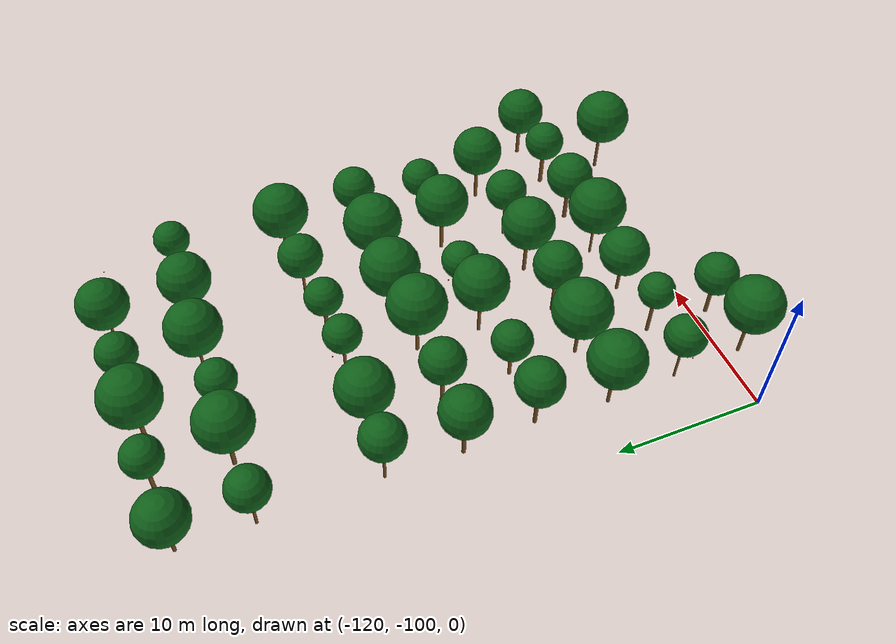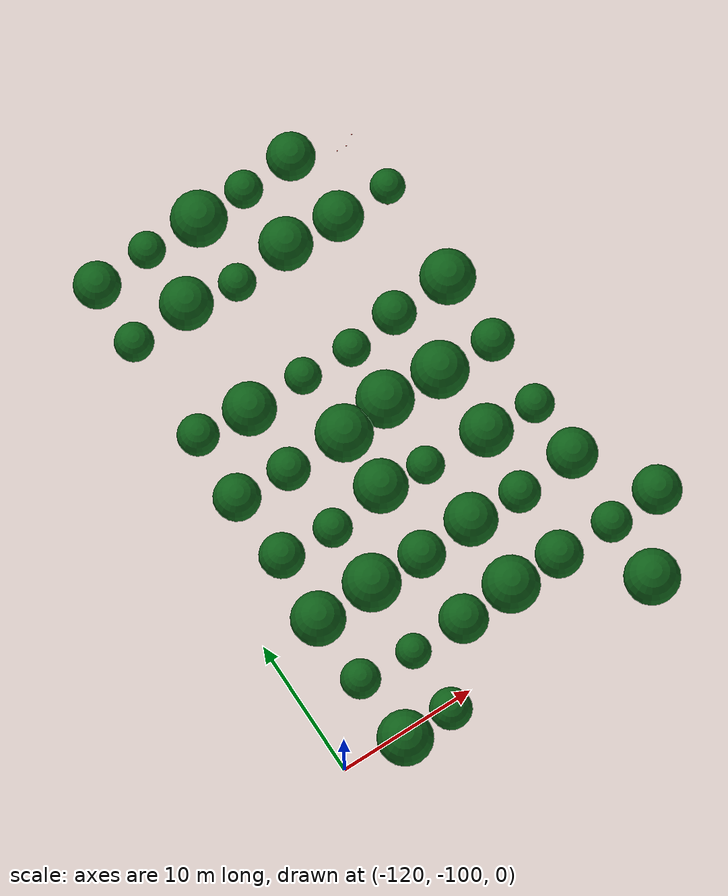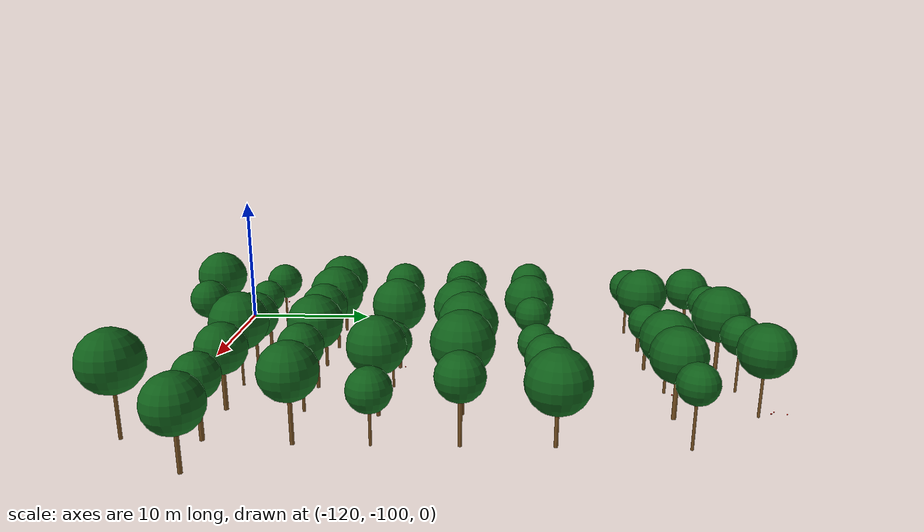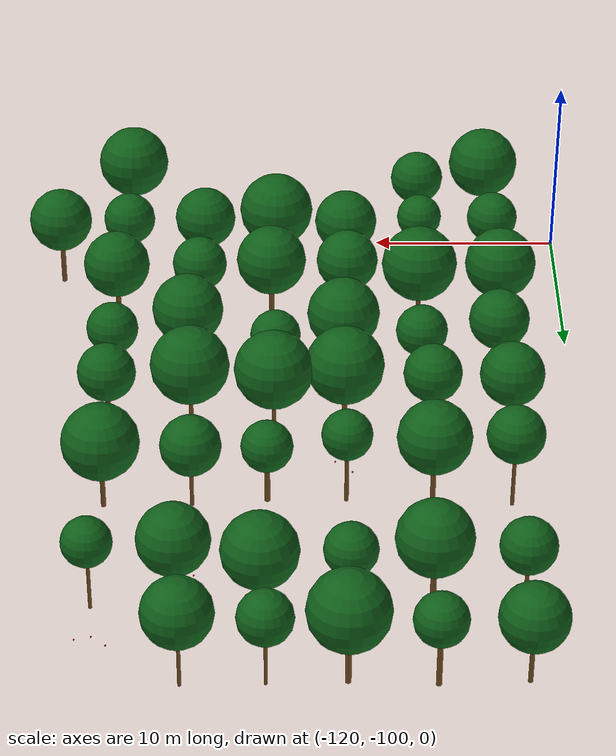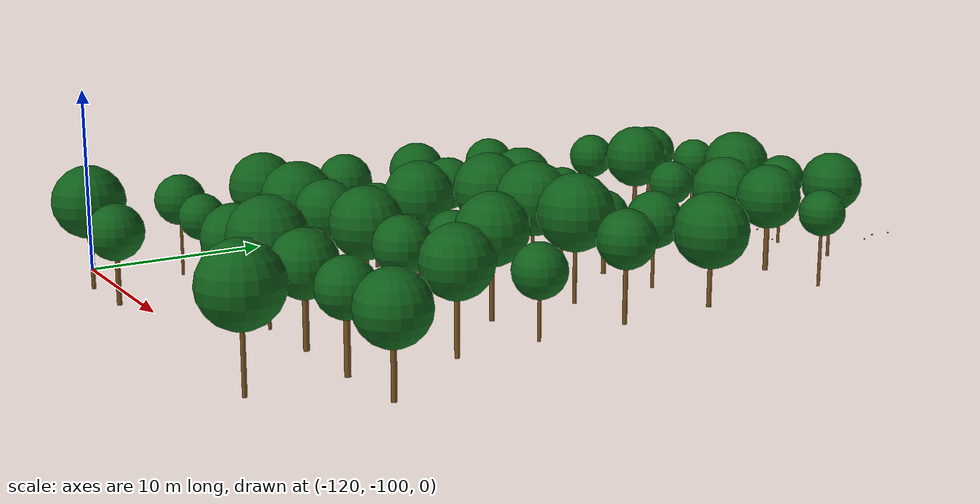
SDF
<sdf version="1.9">
 <world name="cheongsong_orchard">
  <model name="apple_tree_162">
   <static>true</static>
   <pose>-115.96 -101.16 0 0 0 0</pose>
   <link name="link">
    <collision name="trunk_col">
     <pose>0 0 1.40 0 0 0</pose>
     <geometry><cylinder><radius>0.110</radius><length>2.79</length></cylinder></geometry>
    </collision>
    <visual name="trunk_vis">
     <pose>0 0 1.40 0 0 0</pose>
     <geometry><cylinder><radius>0.110</radius><length>2.79</length></cylinder></geometry>
     <material><ambient>0.35 0.22 0.08 1</ambient><diffuse>0.45 0.30 0.12 1</diffuse></material>
    </visual>
    <collision name="canopy_col">
     <pose>0 0 4.70 0 0 0</pose>
     <geometry><sphere><radius>1.91</radius></sphere></geometry>
    </collision>
    <visual name="canopy_vis">
     <pose>0 0 4.70 0 0 0</pose>
     <geometry><sphere><radius>1.91</radius></sphere></geometry>
     <material><ambient>0.04 0.28 0.06 1</ambient><diffuse>0.06 0.38 0.10 1</diffuse></material>
    </visual>
   </link>
  </model>
  <model name="apple_tree_163">
   <static>true</static>
   <pose>-112.24 -100.99 0 0 0 0</pose>
   <link name="link">
    <collision name="trunk_col">
     <pose>0 0 1.17 0 0 0</pose>
     <geometry><cylinder><radius>0.131</radius><length>2.34</length></cylinder></geometry>
    </collision>
    <visual name="trunk_vis">
     <pose>0 0 1.17 0 0 0</pose>
     <geometry><cylinder><radius>0.131</radius><length>2.34</length></cylinder></geometry>
     <material><ambient>0.35 0.22 0.08 1</ambient><diffuse>0.45 0.30 0.12 1</diffuse></material>
    </visual>
    <collision name="canopy_col">
     <pose>0 0 3.79 0 0 0</pose>
     <geometry><sphere><radius>1.45</radius></sphere></geometry>
    </collision>
    <visual name="canopy_vis">
     <pose>0 0 3.79 0 0 0</pose>
     <geometry><sphere><radius>1.45</radius></sphere></geometry>
     <material><ambient>0.04 0.28 0.06 1</ambient><diffuse>0.06 0.38 0.10 1</diffuse></material>
    </visual>
   </link>
  </model>
  <model name="apple_tree_167">
   <static>true</static>
   <pose>-96.24 -100.97 0 0 0 0</pose>
   <link name="link">
    <collision name="trunk_col">
     <pose>0 0 1.43 0 0 0</pose>
     <geometry><cylinder><radius>0.110</radius><length>2.87</length></cylinder></geometry>
    </collision>
    <visual name="trunk_vis">
     <pose>0 0 1.43 0 0 0</pose>
     <geometry><cylinder><radius>0.110</radius><length>2.87</length></cylinder></geometry>
     <material><ambient>0.35 0.22 0.08 1</ambient><diffuse>0.45 0.30 0.12 1</diffuse></material>
    </visual>
    <collision name="canopy_col">
     <pose>0 0 4.80 0 0 0</pose>
     <geometry><sphere><radius>1.93</radius></sphere></geometry>
    </collision>
    <visual name="canopy_vis">
     <pose>0 0 4.80 0 0 0</pose>
     <geometry><sphere><radius>1.93</radius></sphere></geometry>
     <material><ambient>0.04 0.28 0.06 1</ambient><diffuse>0.06 0.38 0.10 1</diffuse></material>
    </visual>
   </link>
  </model>
  <model name="apple_tree_210">
   <static>true</static>
   <pose>-116.21 -96.12 0 0 0 0</pose>
   <link name="link">
    <collision name="trunk_col">
     <pose>0 0 1.42 0 0 0</pose>
     <geometry><cylinder><radius>0.081</radius><length>2.83</length></cylinder></geometry>
    </collision>
    <visual name="trunk_vis">
     <pose>0 0 1.42 0 0 0</pose>
     <geometry><cylinder><radius>0.081</radius><length>2.83</length></cylinder></geometry>
     <material><ambient>0.35 0.22 0.08 1</ambient><diffuse>0.45 0.30 0.12 1</diffuse></material>
    </visual>
    <collision name="canopy_col">
     <pose>0 0 4.21 0 0 0</pose>
     <geometry><sphere><radius>1.37</radius></sphere></geometry>
    </collision>
    <visual name="canopy_vis">
     <pose>0 0 4.21 0 0 0</pose>
     <geometry><sphere><radius>1.37</radius></sphere></geometry>
     <material><ambient>0.04 0.28 0.06 1</ambient><diffuse>0.06 0.38 0.10 1</diffuse></material>
    </visual>
   </link>
  </model>
  <model name="apple_tree_211">
   <static>true</static>
   <pose>-112.22 -96.42 0 0 0 0</pose>
   <link name="link">
    <collision name="trunk_col">
     <pose>0 0 1.42 0 0 0</pose>
     <geometry><cylinder><radius>0.122</radius><length>2.83</length></cylinder></geometry>
    </collision>
    <visual name="trunk_vis">
     <pose>0 0 1.42 0 0 0</pose>
     <geometry><cylinder><radius>0.122</radius><length>2.83</length></cylinder></geometry>
     <material><ambient>0.35 0.22 0.08 1</ambient><diffuse>0.45 0.30 0.12 1</diffuse></material>
    </visual>
    <collision name="canopy_col">
     <pose>0 0 4.05 0 0 0</pose>
     <geometry><sphere><radius>1.21</radius></sphere></geometry>
    </collision>
    <visual name="canopy_vis">
     <pose>0 0 4.05 0 0 0</pose>
     <geometry><sphere><radius>1.21</radius></sphere></geometry>
     <material><ambient>0.04 0.28 0.06 1</ambient><diffuse>0.06 0.38 0.10 1</diffuse></material>
    </visual>
   </link>
  </model>
  <model name="apple_tree_212">
   <static>true</static>
   <pose>-108.18 -96.34 0 0 0 0</pose>
   <link name="link">
    <collision name="trunk_col">
     <pose>0 0 1.04 0 0 0</pose>
     <geometry><cylinder><radius>0.110</radius><length>2.09</length></cylinder></geometry>
    </collision>
    <visual name="trunk_vis">
     <pose>0 0 1.04 0 0 0</pose>
     <geometry><cylinder><radius>0.110</radius><length>2.09</length></cylinder></geometry>
     <material><ambient>0.35 0.22 0.08 1</ambient><diffuse>0.45 0.30 0.12 1</diffuse></material>
    </visual>
    <collision name="canopy_col">
     <pose>0 0 3.78 0 0 0</pose>
     <geometry><sphere><radius>1.69</radius></sphere></geometry>
    </collision>
    <visual name="canopy_vis">
     <pose>0 0 3.78 0 0 0</pose>
     <geometry><sphere><radius>1.69</radius></sphere></geometry>
     <material><ambient>0.04 0.28 0.06 1</ambient><diffuse>0.06 0.38 0.10 1</diffuse></material>
    </visual>
   </link>
  </model>
  <model name="apple_tree_213">
   <static>true</static>
   <pose>-104.35 -96.24 0 0 0 0</pose>
   <link name="link">
    <collision name="trunk_col">
     <pose>0 0 1.30 0 0 0</pose>
     <geometry><cylinder><radius>0.086</radius><length>2.60</length></cylinder></geometry>
    </collision>
    <visual name="trunk_vis">
     <pose>0 0 1.30 0 0 0</pose>
     <geometry><cylinder><radius>0.086</radius><length>2.60</length></cylinder></geometry>
     <material><ambient>0.35 0.22 0.08 1</ambient><diffuse>0.45 0.30 0.12 1</diffuse></material>
    </visual>
    <collision name="canopy_col">
     <pose>0 0 4.58 0 0 0</pose>
     <geometry><sphere><radius>1.98</radius></sphere></geometry>
    </collision>
    <visual name="canopy_vis">
     <pose>0 0 4.58 0 0 0</pose>
     <geometry><sphere><radius>1.98</radius></sphere></geometry>
     <material><ambient>0.04 0.28 0.06 1</ambient><diffuse>0.06 0.38 0.10 1</diffuse></material>
    </visual>
   </link>
  </model>
  <model name="apple_tree_214">
   <static>true</static>
   <pose>-100.45 -96.17 0 0 0 0</pose>
   <link name="link">
    <collision name="trunk_col">
     <pose>0 0 1.22 0 0 0</pose>
     <geometry><cylinder><radius>0.149</radius><length>2.44</length></cylinder></geometry>
    </collision>
    <visual name="trunk_vis">
     <pose>0 0 1.22 0 0 0</pose>
     <geometry><cylinder><radius>0.149</radius><length>2.44</length></cylinder></geometry>
     <material><ambient>0.35 0.22 0.08 1</ambient><diffuse>0.45 0.30 0.12 1</diffuse></material>
    </visual>
    <collision name="canopy_col">
     <pose>0 0 4.09 0 0 0</pose>
     <geometry><sphere><radius>1.64</radius></sphere></geometry>
    </collision>
    <visual name="canopy_vis">
     <pose>0 0 4.09 0 0 0</pose>
     <geometry><sphere><radius>1.64</radius></sphere></geometry>
     <material><ambient>0.04 0.28 0.06 1</ambient><diffuse>0.06 0.38 0.10 1</diffuse></material>
    </visual>
   </link>
  </model>
  <model name="apple_tree_215">
   <static>true</static>
   <pose>-96.26 -96.21 0 0 0 0</pose>
   <link name="link">
    <collision name="trunk_col">
     <pose>0 0 1.28 0 0 0</pose>
     <geometry><cylinder><radius>0.149</radius><length>2.57</length></cylinder></geometry>
    </collision>
    <visual name="trunk_vis">
     <pose>0 0 1.28 0 0 0</pose>
     <geometry><cylinder><radius>0.149</radius><length>2.57</length></cylinder></geometry>
     <material><ambient>0.35 0.22 0.08 1</ambient><diffuse>0.45 0.30 0.12 1</diffuse></material>
    </visual>
    <collision name="canopy_col">
     <pose>0 0 3.97 0 0 0</pose>
     <geometry><sphere><radius>1.40</radius></sphere></geometry>
    </collision>
    <visual name="canopy_vis">
     <pose>0 0 3.97 0 0 0</pose>
     <geometry><sphere><radius>1.40</radius></sphere></geometry>
     <material><ambient>0.04 0.28 0.06 1</ambient><diffuse>0.06 0.38 0.10 1</diffuse></material>
    </visual>
   </link>
  </model>
  <model name="apple_tree_216">
   <static>true</static>
   <pose>-92.48 -96.02 0 0 0 0</pose>
   <link name="link">
    <collision name="trunk_col">
     <pose>0 0 1.14 0 0 0</pose>
     <geometry><cylinder><radius>0.131</radius><length>2.29</length></cylinder></geometry>
    </collision>
    <visual name="trunk_vis">
     <pose>0 0 1.14 0 0 0</pose>
     <geometry><cylinder><radius>0.131</radius><length>2.29</length></cylinder></geometry>
     <material><ambient>0.35 0.22 0.08 1</ambient><diffuse>0.45 0.30 0.12 1</diffuse></material>
    </visual>
    <collision name="canopy_col">
     <pose>0 0 3.99 0 0 0</pose>
     <geometry><sphere><radius>1.70</radius></sphere></geometry>
    </collision>
    <visual name="canopy_vis">
     <pose>0 0 3.99 0 0 0</pose>
     <geometry><sphere><radius>1.70</radius></sphere></geometry>
     <material><ambient>0.04 0.28 0.06 1</ambient><diffuse>0.06 0.38 0.10 1</diffuse></material>
    </visual>
   </link>
  </model>
  <model name="apple_tree_261">
   <static>true</static>
   <pose>-116.37 -91.19 0 0 0 0</pose>
   <link name="link">
    <collision name="trunk_col">
     <pose>0 0 1.27 0 0 0</pose>
     <geometry><cylinder><radius>0.113</radius><length>2.55</length></cylinder></geometry>
    </collision>
    <visual name="trunk_vis">
     <pose>0 0 1.27 0 0 0</pose>
     <geometry><cylinder><radius>0.113</radius><length>2.55</length></cylinder></geometry>
     <material><ambient>0.35 0.22 0.08 1</ambient><diffuse>0.45 0.30 0.12 1</diffuse></material>
    </visual>
    <collision name="canopy_col">
     <pose>0 0 4.42 0 0 0</pose>
     <geometry><sphere><radius>1.88</radius></sphere></geometry>
    </collision>
    <visual name="canopy_vis">
     <pose>0 0 4.42 0 0 0</pose>
     <geometry><sphere><radius>1.88</radius></sphere></geometry>
     <material><ambient>0.04 0.28 0.06 1</ambient><diffuse>0.06 0.38 0.10 1</diffuse></material>
    </visual>
   </link>
  </model>
  <model name="apple_tree_262">
   <static>true</static>
   <pose>-112.05 -91.07 0 0 0 0</pose>
   <link name="link">
    <collision name="trunk_col">
     <pose>0 0 1.23 0 0 0</pose>
     <geometry><cylinder><radius>0.119</radius><length>2.46</length></cylinder></geometry>
    </collision>
    <visual name="trunk_vis">
     <pose>0 0 1.23 0 0 0</pose>
     <geometry><cylinder><radius>0.119</radius><length>2.46</length></cylinder></geometry>
     <material><ambient>0.35 0.22 0.08 1</ambient><diffuse>0.45 0.30 0.12 1</diffuse></material>
    </visual>
    <collision name="canopy_col">
     <pose>0 0 4.45 0 0 0</pose>
     <geometry><sphere><radius>2.00</radius></sphere></geometry>
    </collision>
    <visual name="canopy_vis">
     <pose>0 0 4.45 0 0 0</pose>
     <geometry><sphere><radius>2.00</radius></sphere></geometry>
     <material><ambient>0.04 0.28 0.06 1</ambient><diffuse>0.06 0.38 0.10 1</diffuse></material>
    </visual>
   </link>
  </model>
  <model name="apple_tree_263">
   <static>true</static>
   <pose>-108.20 -91.26 0 0 0 0</pose>
   <link name="link">
    <collision name="trunk_col">
     <pose>0 0 1.44 0 0 0</pose>
     <geometry><cylinder><radius>0.112</radius><length>2.88</length></cylinder></geometry>
    </collision>
    <visual name="trunk_vis">
     <pose>0 0 1.44 0 0 0</pose>
     <geometry><cylinder><radius>0.112</radius><length>2.88</length></cylinder></geometry>
     <material><ambient>0.35 0.22 0.08 1</ambient><diffuse>0.45 0.30 0.12 1</diffuse></material>
    </visual>
    <collision name="canopy_col">
     <pose>0 0 4.51 0 0 0</pose>
     <geometry><sphere><radius>1.63</radius></sphere></geometry>
    </collision>
    <visual name="canopy_vis">
     <pose>0 0 4.51 0 0 0</pose>
     <geometry><sphere><radius>1.63</radius></sphere></geometry>
     <material><ambient>0.04 0.28 0.06 1</ambient><diffuse>0.06 0.38 0.10 1</diffuse></material>
    </visual>
   </link>
  </model>
  <model name="apple_tree_264">
   <static>true</static>
   <pose>-104.16 -91.08 0 0 0 0</pose>
   <link name="link">
    <collision name="trunk_col">
     <pose>0 0 1.40 0 0 0</pose>
     <geometry><cylinder><radius>0.128</radius><length>2.80</length></cylinder></geometry>
    </collision>
    <visual name="trunk_vis">
     <pose>0 0 1.40 0 0 0</pose>
     <geometry><cylinder><radius>0.128</radius><length>2.80</length></cylinder></geometry>
     <material><ambient>0.35 0.22 0.08 1</ambient><diffuse>0.45 0.30 0.12 1</diffuse></material>
    </visual>
    <collision name="canopy_col">
     <pose>0 0 4.64 0 0 0</pose>
     <geometry><sphere><radius>1.84</radius></sphere></geometry>
    </collision>
    <visual name="canopy_vis">
     <pose>0 0 4.64 0 0 0</pose>
     <geometry><sphere><radius>1.84</radius></sphere></geometry>
     <material><ambient>0.04 0.28 0.06 1</ambient><diffuse>0.06 0.38 0.10 1</diffuse></material>
    </visual>
   </link>
  </model>
  <model name="apple_tree_265">
   <static>true</static>
   <pose>-100.33 -91.20 0 0 0 0</pose>
   <link name="link">
    <collision name="trunk_col">
     <pose>0 0 1.44 0 0 0</pose>
     <geometry><cylinder><radius>0.100</radius><length>2.88</length></cylinder></geometry>
    </collision>
    <visual name="trunk_vis">
     <pose>0 0 1.44 0 0 0</pose>
     <geometry><cylinder><radius>0.100</radius><length>2.88</length></cylinder></geometry>
     <material><ambient>0.35 0.22 0.08 1</ambient><diffuse>0.45 0.30 0.12 1</diffuse></material>
    </visual>
    <collision name="canopy_col">
     <pose>0 0 4.32 0 0 0</pose>
     <geometry><sphere><radius>1.44</radius></sphere></geometry>
    </collision>
    <visual name="canopy_vis">
     <pose>0 0 4.32 0 0 0</pose>
     <geometry><sphere><radius>1.44</radius></sphere></geometry>
     <material><ambient>0.04 0.28 0.06 1</ambient><diffuse>0.06 0.38 0.10 1</diffuse></material>
    </visual>
   </link>
  </model>
  <model name="apple_tree_266">
   <static>true</static>
   <pose>-95.92 -90.90 0 0 0 0</pose>
   <link name="link">
    <collision name="trunk_col">
     <pose>0 0 1.35 0 0 0</pose>
     <geometry><cylinder><radius>0.129</radius><length>2.70</length></cylinder></geometry>
    </collision>
    <visual name="trunk_vis">
     <pose>0 0 1.35 0 0 0</pose>
     <geometry><cylinder><radius>0.129</radius><length>2.70</length></cylinder></geometry>
     <material><ambient>0.35 0.22 0.08 1</ambient><diffuse>0.45 0.30 0.12 1</diffuse></material>
    </visual>
    <collision name="canopy_col">
     <pose>0 0 4.45 0 0 0</pose>
     <geometry><sphere><radius>1.75</radius></sphere></geometry>
    </collision>
    <visual name="canopy_vis">
     <pose>0 0 4.45 0 0 0</pose>
     <geometry><sphere><radius>1.75</radius></sphere></geometry>
     <material><ambient>0.04 0.28 0.06 1</ambient><diffuse>0.06 0.38 0.10 1</diffuse></material>
    </visual>
   </link>
  </model>
  <model name="apple_tree_317">
   <static>true</static>
   <pose>-116.03 -86.20 0 0 0 0</pose>
   <link name="link">
    <collision name="trunk_col">
     <pose>0 0 1.33 0 0 0</pose>
     <geometry><cylinder><radius>0.132</radius><length>2.66</length></cylinder></geometry>
    </collision>
    <visual name="trunk_vis">
     <pose>0 0 1.33 0 0 0</pose>
     <geometry><cylinder><radius>0.132</radius><length>2.66</length></cylinder></geometry>
     <material><ambient>0.35 0.22 0.08 1</ambient><diffuse>0.45 0.30 0.12 1</diffuse></material>
    </visual>
    <collision name="canopy_col">
     <pose>0 0 4.22 0 0 0</pose>
     <geometry><sphere><radius>1.57</radius></sphere></geometry>
    </collision>
    <visual name="canopy_vis">
     <pose>0 0 4.22 0 0 0</pose>
     <geometry><sphere><radius>1.57</radius></sphere></geometry>
     <material><ambient>0.04 0.28 0.06 1</ambient><diffuse>0.06 0.38 0.10 1</diffuse></material>
    </visual>
   </link>
  </model>
  <model name="apple_tree_318">
   <static>true</static>
   <pose>-112.05 -86.28 0 0 0 0</pose>
   <link name="link">
    <collision name="trunk_col">
     <pose>0 0 1.04 0 0 0</pose>
     <geometry><cylinder><radius>0.118</radius><length>2.09</length></cylinder></geometry>
    </collision>
    <visual name="trunk_vis">
     <pose>0 0 1.04 0 0 0</pose>
     <geometry><cylinder><radius>0.118</radius><length>2.09</length></cylinder></geometry>
     <material><ambient>0.35 0.22 0.08 1</ambient><diffuse>0.45 0.30 0.12 1</diffuse></material>
    </visual>
    <collision name="canopy_col">
     <pose>0 0 3.43 0 0 0</pose>
     <geometry><sphere><radius>1.35</radius></sphere></geometry>
    </collision>
    <visual name="canopy_vis">
     <pose>0 0 3.43 0 0 0</pose>
     <geometry><sphere><radius>1.35</radius></sphere></geometry>
     <material><ambient>0.04 0.28 0.06 1</ambient><diffuse>0.06 0.38 0.10 1</diffuse></material>
    </visual>
   </link>
  </model>
  <model name="apple_tree_319">
   <static>true</static>
   <pose>-107.96 -85.90 0 0 0 0</pose>
   <link name="link">
    <collision name="trunk_col">
     <pose>0 0 1.44 0 0 0</pose>
     <geometry><cylinder><radius>0.117</radius><length>2.88</length></cylinder></geometry>
    </collision>
    <visual name="trunk_vis">
     <pose>0 0 1.44 0 0 0</pose>
     <geometry><cylinder><radius>0.117</radius><length>2.88</length></cylinder></geometry>
     <material><ambient>0.35 0.22 0.08 1</ambient><diffuse>0.45 0.30 0.12 1</diffuse></material>
    </visual>
    <collision name="canopy_col">
     <pose>0 0 4.75 0 0 0</pose>
     <geometry><sphere><radius>1.87</radius></sphere></geometry>
    </collision>
    <visual name="canopy_vis">
     <pose>0 0 4.75 0 0 0</pose>
     <geometry><sphere><radius>1.87</radius></sphere></geometry>
     <material><ambient>0.04 0.28 0.06 1</ambient><diffuse>0.06 0.38 0.10 1</diffuse></material>
    </visual>
   </link>
  </model>
  <model name="apple_tree_320">
   <static>true</static>
   <pose>-104.44 -86.00 0 0 0 0</pose>
   <link name="link">
    <collision name="trunk_col">
     <pose>0 0 1.00 0 0 0</pose>
     <geometry><cylinder><radius>0.080</radius><length>2.00</length></cylinder></geometry>
    </collision>
    <visual name="trunk_vis">
     <pose>0 0 1.00 0 0 0</pose>
     <geometry><cylinder><radius>0.080</radius><length>2.00</length></cylinder></geometry>
     <material><ambient>0.35 0.22 0.08 1</ambient><diffuse>0.45 0.30 0.12 1</diffuse></material>
    </visual>
    <collision name="canopy_col">
     <pose>0 0 3.31 0 0 0</pose>
     <geometry><sphere><radius>1.31</radius></sphere></geometry>
    </collision>
    <visual name="canopy_vis">
     <pose>0 0 3.31 0 0 0</pose>
     <geometry><sphere><radius>1.31</radius></sphere></geometry>
     <material><ambient>0.04 0.28 0.06 1</ambient><diffuse>0.06 0.38 0.10 1</diffuse></material>
    </visual>
   </link>
  </model>
  <model name="apple_tree_321">
   <static>true</static>
   <pose>-99.90 -86.48 0 0 0 0</pose>
   <link name="link">
    <collision name="trunk_col">
     <pose>0 0 1.37 0 0 0</pose>
     <geometry><cylinder><radius>0.127</radius><length>2.74</length></cylinder></geometry>
    </collision>
    <visual name="trunk_vis">
     <pose>0 0 1.37 0 0 0</pose>
     <geometry><cylinder><radius>0.127</radius><length>2.74</length></cylinder></geometry>
     <material><ambient>0.35 0.22 0.08 1</ambient><diffuse>0.45 0.30 0.12 1</diffuse></material>
    </visual>
    <collision name="canopy_col">
     <pose>0 0 4.59 0 0 0</pose>
     <geometry><sphere><radius>1.84</radius></sphere></geometry>
    </collision>
    <visual name="canopy_vis">
     <pose>0 0 4.59 0 0 0</pose>
     <geometry><sphere><radius>1.84</radius></sphere></geometry>
     <material><ambient>0.04 0.28 0.06 1</ambient><diffuse>0.06 0.38 0.10 1</diffuse></material>
    </visual>
   </link>
  </model>
  <model name="apple_tree_322">
   <static>true</static>
   <pose>-95.94 -86.43 0 0 0 0</pose>
   <link name="link">
    <collision name="trunk_col">
     <pose>0 0 1.02 0 0 0</pose>
     <geometry><cylinder><radius>0.090</radius><length>2.04</length></cylinder></geometry>
    </collision>
    <visual name="trunk_vis">
     <pose>0 0 1.02 0 0 0</pose>
     <geometry><cylinder><radius>0.090</radius><length>2.04</length></cylinder></geometry>
     <material><ambient>0.35 0.22 0.08 1</ambient><diffuse>0.45 0.30 0.12 1</diffuse></material>
    </visual>
    <collision name="canopy_col">
     <pose>0 0 3.40 0 0 0</pose>
     <geometry><sphere><radius>1.35</radius></sphere></geometry>
    </collision>
    <visual name="canopy_vis">
     <pose>0 0 3.40 0 0 0</pose>
     <geometry><sphere><radius>1.35</radius></sphere></geometry>
     <material><ambient>0.04 0.28 0.06 1</ambient><diffuse>0.06 0.38 0.10 1</diffuse></material>
    </visual>
   </link>
  </model>
  <model name="apple_tree_372">
   <static>true</static>
   <pose>-116.39 -81.22 0 0 0 0</pose>
   <link name="link">
    <collision name="trunk_col">
     <pose>0 0 1.34 0 0 0</pose>
     <geometry><cylinder><radius>0.134</radius><length>2.67</length></cylinder></geometry>
    </collision>
    <visual name="trunk_vis">
     <pose>0 0 1.34 0 0 0</pose>
     <geometry><cylinder><radius>0.134</radius><length>2.67</length></cylinder></geometry>
     <material><ambient>0.35 0.22 0.08 1</ambient><diffuse>0.45 0.30 0.12 1</diffuse></material>
    </visual>
    <collision name="canopy_col">
     <pose>0 0 4.31 0 0 0</pose>
     <geometry><sphere><radius>1.64</radius></sphere></geometry>
    </collision>
    <visual name="canopy_vis">
     <pose>0 0 4.31 0 0 0</pose>
     <geometry><sphere><radius>1.64</radius></sphere></geometry>
     <material><ambient>0.04 0.28 0.06 1</ambient><diffuse>0.06 0.38 0.10 1</diffuse></material>
    </visual>
   </link>
  </model>
  <model name="apple_tree_373">
   <static>true</static>
   <pose>-112.42 -81.42 0 0 0 0</pose>
   <link name="link">
    <collision name="trunk_col">
     <pose>0 0 1.35 0 0 0</pose>
     <geometry><cylinder><radius>0.138</radius><length>2.71</length></cylinder></geometry>
    </collision>
    <visual name="trunk_vis">
     <pose>0 0 1.35 0 0 0</pose>
     <geometry><cylinder><radius>0.138</radius><length>2.71</length></cylinder></geometry>
     <material><ambient>0.35 0.22 0.08 1</ambient><diffuse>0.45 0.30 0.12 1</diffuse></material>
    </visual>
    <collision name="canopy_col">
     <pose>0 0 4.20 0 0 0</pose>
     <geometry><sphere><radius>1.49</radius></sphere></geometry>
    </collision>
    <visual name="canopy_vis">
     <pose>0 0 4.20 0 0 0</pose>
     <geometry><sphere><radius>1.49</radius></sphere></geometry>
     <material><ambient>0.04 0.28 0.06 1</ambient><diffuse>0.06 0.38 0.10 1</diffuse></material>
    </visual>
   </link>
  </model>
  <model name="apple_tree_374">
   <static>true</static>
   <pose>-108.00 -81.46 0 0 0 0</pose>
   <link name="link">
    <collision name="trunk_col">
     <pose>0 0 1.33 0 0 0</pose>
     <geometry><cylinder><radius>0.118</radius><length>2.65</length></cylinder></geometry>
    </collision>
    <visual name="trunk_vis">
     <pose>0 0 1.33 0 0 0</pose>
     <geometry><cylinder><radius>0.118</radius><length>2.65</length></cylinder></geometry>
     <material><ambient>0.35 0.22 0.08 1</ambient><diffuse>0.45 0.30 0.12 1</diffuse></material>
    </visual>
    <collision name="canopy_col">
     <pose>0 0 4.64 0 0 0</pose>
     <geometry><sphere><radius>1.99</radius></sphere></geometry>
    </collision>
    <visual name="canopy_vis">
     <pose>0 0 4.64 0 0 0</pose>
     <geometry><sphere><radius>1.99</radius></sphere></geometry>
     <material><ambient>0.04 0.28 0.06 1</ambient><diffuse>0.06 0.38 0.10 1</diffuse></material>
    </visual>
   </link>
  </model>
  <model name="apple_tree_375">
   <static>true</static>
   <pose>-104.43 -80.99 0 0 0 0</pose>
   <link name="link">
    <collision name="trunk_col">
     <pose>0 0 1.34 0 0 0</pose>
     <geometry><cylinder><radius>0.101</radius><length>2.68</length></cylinder></geometry>
    </collision>
    <visual name="trunk_vis">
     <pose>0 0 1.34 0 0 0</pose>
     <geometry><cylinder><radius>0.101</radius><length>2.68</length></cylinder></geometry>
     <material><ambient>0.35 0.22 0.08 1</ambient><diffuse>0.45 0.30 0.12 1</diffuse></material>
    </visual>
    <collision name="canopy_col">
     <pose>0 0 4.68 0 0 0</pose>
     <geometry><sphere><radius>2.00</radius></sphere></geometry>
    </collision>
    <visual name="canopy_vis">
     <pose>0 0 4.68 0 0 0</pose>
     <geometry><sphere><radius>2.00</radius></sphere></geometry>
     <material><ambient>0.04 0.28 0.06 1</ambient><diffuse>0.06 0.38 0.10 1</diffuse></material>
    </visual>
   </link>
  </model>
  <model name="apple_tree_376">
   <static>true</static>
   <pose>-100.22 -81.28 0 0 0 0</pose>
   <link name="link">
    <collision name="trunk_col">
     <pose>0 0 1.37 0 0 0</pose>
     <geometry><cylinder><radius>0.111</radius><length>2.75</length></cylinder></geometry>
    </collision>
    <visual name="trunk_vis">
     <pose>0 0 1.37 0 0 0</pose>
     <geometry><cylinder><radius>0.111</radius><length>2.75</length></cylinder></geometry>
     <material><ambient>0.35 0.22 0.08 1</ambient><diffuse>0.45 0.30 0.12 1</diffuse></material>
    </visual>
    <collision name="canopy_col">
     <pose>0 0 4.74 0 0 0</pose>
     <geometry><sphere><radius>2.00</radius></sphere></geometry>
    </collision>
    <visual name="canopy_vis">
     <pose>0 0 4.74 0 0 0</pose>
     <geometry><sphere><radius>2.00</radius></sphere></geometry>
     <material><ambient>0.04 0.28 0.06 1</ambient><diffuse>0.06 0.38 0.10 1</diffuse></material>
    </visual>
   </link>
  </model>
  <model name="apple_tree_377">
   <static>true</static>
   <pose>-96.02 -81.35 0 0 0 0</pose>
   <link name="link">
    <collision name="trunk_col">
     <pose>0 0 1.37 0 0 0</pose>
     <geometry><cylinder><radius>0.121</radius><length>2.74</length></cylinder></geometry>
    </collision>
    <visual name="trunk_vis">
     <pose>0 0 1.37 0 0 0</pose>
     <geometry><cylinder><radius>0.121</radius><length>2.74</length></cylinder></geometry>
     <material><ambient>0.35 0.22 0.08 1</ambient><diffuse>0.45 0.30 0.12 1</diffuse></material>
    </visual>
    <collision name="canopy_col">
     <pose>0 0 4.22 0 0 0</pose>
     <geometry><sphere><radius>1.48</radius></sphere></geometry>
    </collision>
    <visual name="canopy_vis">
     <pose>0 0 4.22 0 0 0</pose>
     <geometry><sphere><radius>1.48</radius></sphere></geometry>
     <material><ambient>0.04 0.28 0.06 1</ambient><diffuse>0.06 0.38 0.10 1</diffuse></material>
    </visual>
   </link>
  </model>
  <model name="apple_tree_428">
   <static>true</static>
   <pose>-116.25 -76.17 0 0 0 0</pose>
   <link name="link">
    <collision name="trunk_col">
     <pose>0 0 1.45 0 0 0</pose>
     <geometry><cylinder><radius>0.095</radius><length>2.89</length></cylinder></geometry>
    </collision>
    <visual name="trunk_vis">
     <pose>0 0 1.45 0 0 0</pose>
     <geometry><cylinder><radius>0.095</radius><length>2.89</length></cylinder></geometry>
     <material><ambient>0.35 0.22 0.08 1</ambient><diffuse>0.45 0.30 0.12 1</diffuse></material>
    </visual>
    <collision name="canopy_col">
     <pose>0 0 4.34 0 0 0</pose>
     <geometry><sphere><radius>1.45</radius></sphere></geometry>
    </collision>
    <visual name="canopy_vis">
     <pose>0 0 4.34 0 0 0</pose>
     <geometry><sphere><radius>1.45</radius></sphere></geometry>
     <material><ambient>0.04 0.28 0.06 1</ambient><diffuse>0.06 0.38 0.10 1</diffuse></material>
    </visual>
   </link>
  </model>
  <model name="apple_tree_429">
   <static>true</static>
   <pose>-112.33 -76.42 0 0 0 0</pose>
   <link name="link">
    <collision name="trunk_col">
     <pose>0 0 1.05 0 0 0</pose>
     <geometry><cylinder><radius>0.128</radius><length>2.10</length></cylinder></geometry>
    </collision>
    <visual name="trunk_vis">
     <pose>0 0 1.05 0 0 0</pose>
     <geometry><cylinder><radius>0.128</radius><length>2.10</length></cylinder></geometry>
     <material><ambient>0.35 0.22 0.08 1</ambient><diffuse>0.45 0.30 0.12 1</diffuse></material>
    </visual>
    <collision name="canopy_col">
     <pose>0 0 3.96 0 0 0</pose>
     <geometry><sphere><radius>1.86</radius></sphere></geometry>
    </collision>
    <visual name="canopy_vis">
     <pose>0 0 3.96 0 0 0</pose>
     <geometry><sphere><radius>1.86</radius></sphere></geometry>
     <material><ambient>0.04 0.28 0.06 1</ambient><diffuse>0.06 0.38 0.10 1</diffuse></material>
    </visual>
   </link>
  </model>
  <model name="apple_tree_430">
   <static>true</static>
   <pose>-108.07 -76.47 0 0 0 0</pose>
   <link name="link">
    <collision name="trunk_col">
     <pose>0 0 1.38 0 0 0</pose>
     <geometry><cylinder><radius>0.103</radius><length>2.77</length></cylinder></geometry>
    </collision>
    <visual name="trunk_vis">
     <pose>0 0 1.38 0 0 0</pose>
     <geometry><cylinder><radius>0.103</radius><length>2.77</length></cylinder></geometry>
     <material><ambient>0.35 0.22 0.08 1</ambient><diffuse>0.45 0.30 0.12 1</diffuse></material>
    </visual>
    <collision name="canopy_col">
     <pose>0 0 4.04 0 0 0</pose>
     <geometry><sphere><radius>1.27</radius></sphere></geometry>
    </collision>
    <visual name="canopy_vis">
     <pose>0 0 4.04 0 0 0</pose>
     <geometry><sphere><radius>1.27</radius></sphere></geometry>
     <material><ambient>0.04 0.28 0.06 1</ambient><diffuse>0.06 0.38 0.10 1</diffuse></material>
    </visual>
   </link>
  </model>
  <model name="apple_tree_431">
   <static>true</static>
   <pose>-104.16 -76.43 0 0 0 0</pose>
   <link name="link">
    <collision name="trunk_col">
     <pose>0 0 1.02 0 0 0</pose>
     <geometry><cylinder><radius>0.136</radius><length>2.05</length></cylinder></geometry>
    </collision>
    <visual name="trunk_vis">
     <pose>0 0 1.02 0 0 0</pose>
     <geometry><cylinder><radius>0.136</radius><length>2.05</length></cylinder></geometry>
     <material><ambient>0.35 0.22 0.08 1</ambient><diffuse>0.45 0.30 0.12 1</diffuse></material>
    </visual>
    <collision name="canopy_col">
     <pose>0 0 3.35 0 0 0</pose>
     <geometry><sphere><radius>1.30</radius></sphere></geometry>
    </collision>
    <visual name="canopy_vis">
     <pose>0 0 3.35 0 0 0</pose>
     <geometry><sphere><radius>1.30</radius></sphere></geometry>
     <material><ambient>0.04 0.28 0.06 1</ambient><diffuse>0.06 0.38 0.10 1</diffuse></material>
    </visual>
   </link>
  </model>
  <model name="apple_tree_432">
   <static>true</static>
   <pose>-100.45 -76.02 0 0 0 0</pose>
   <link name="link">
    <collision name="trunk_col">
     <pose>0 0 1.08 0 0 0</pose>
     <geometry><cylinder><radius>0.094</radius><length>2.17</length></cylinder></geometry>
    </collision>
    <visual name="trunk_vis">
     <pose>0 0 1.08 0 0 0</pose>
     <geometry><cylinder><radius>0.094</radius><length>2.17</length></cylinder></geometry>
     <material><ambient>0.35 0.22 0.08 1</ambient><diffuse>0.45 0.30 0.12 1</diffuse></material>
    </visual>
    <collision name="canopy_col">
     <pose>0 0 3.69 0 0 0</pose>
     <geometry><sphere><radius>1.52</radius></sphere></geometry>
    </collision>
    <visual name="canopy_vis">
     <pose>0 0 3.69 0 0 0</pose>
     <geometry><sphere><radius>1.52</radius></sphere></geometry>
     <material><ambient>0.04 0.28 0.06 1</ambient><diffuse>0.06 0.38 0.10 1</diffuse></material>
    </visual>
   </link>
  </model>
  <model name="apple_tree_433">
   <static>true</static>
   <pose>-96.08 -75.93 0 0 0 0</pose>
   <link name="link">
    <collision name="trunk_col">
     <pose>0 0 1.02 0 0 0</pose>
     <geometry><cylinder><radius>0.121</radius><length>2.03</length></cylinder></geometry>
    </collision>
    <visual name="trunk_vis">
     <pose>0 0 1.02 0 0 0</pose>
     <geometry><cylinder><radius>0.121</radius><length>2.03</length></cylinder></geometry>
     <material><ambient>0.35 0.22 0.08 1</ambient><diffuse>0.45 0.30 0.12 1</diffuse></material>
    </visual>
    <collision name="canopy_col">
     <pose>0 0 3.97 0 0 0</pose>
     <geometry><sphere><radius>1.93</radius></sphere></geometry>
    </collision>
    <visual name="canopy_vis">
     <pose>0 0 3.97 0 0 0</pose>
     <geometry><sphere><radius>1.93</radius></sphere></geometry>
     <material><ambient>0.04 0.28 0.06 1</ambient><diffuse>0.06 0.38 0.10 1</diffuse></material>
    </visual>
   </link>
  </model>
  <model name="apple_tree_486">
   <static>true</static>
   <pose>-116.33 -68.24 0 0 0 0</pose>
   <link name="link">
    <collision name="trunk_col">
     <pose>0 0 1.29 0 0 0</pose>
     <geometry><cylinder><radius>0.093</radius><length>2.58</length></cylinder></geometry>
    </collision>
    <visual name="trunk_vis">
     <pose>0 0 1.29 0 0 0</pose>
     <geometry><cylinder><radius>0.093</radius><length>2.58</length></cylinder></geometry>
     <material><ambient>0.35 0.22 0.08 1</ambient><diffuse>0.45 0.30 0.12 1</diffuse></material>
    </visual>
    <collision name="canopy_col">
     <pose>0 0 3.95 0 0 0</pose>
     <geometry><sphere><radius>1.37</radius></sphere></geometry>
    </collision>
    <visual name="canopy_vis">
     <pose>0 0 3.95 0 0 0</pose>
     <geometry><sphere><radius>1.37</radius></sphere></geometry>
     <material><ambient>0.04 0.28 0.06 1</ambient><diffuse>0.06 0.38 0.10 1</diffuse></material>
    </visual>
   </link>
  </model>
  <model name="apple_tree_487">
   <static>true</static>
   <pose>-112.00 -68.04 0 0 0 0</pose>
   <link name="link">
    <collision name="trunk_col">
     <pose>0 0 1.35 0 0 0</pose>
     <geometry><cylinder><radius>0.141</radius><length>2.69</length></cylinder></geometry>
    </collision>
    <visual name="trunk_vis">
     <pose>0 0 1.35 0 0 0</pose>
     <geometry><cylinder><radius>0.141</radius><length>2.69</length></cylinder></geometry>
     <material><ambient>0.35 0.22 0.08 1</ambient><diffuse>0.45 0.30 0.12 1</diffuse></material>
    </visual>
    <collision name="canopy_col">
     <pose>0 0 4.55 0 0 0</pose>
     <geometry><sphere><radius>1.86</radius></sphere></geometry>
    </collision>
    <visual name="canopy_vis">
     <pose>0 0 4.55 0 0 0</pose>
     <geometry><sphere><radius>1.86</radius></sphere></geometry>
     <material><ambient>0.04 0.28 0.06 1</ambient><diffuse>0.06 0.38 0.10 1</diffuse></material>
    </visual>
   </link>
  </model>
  <model name="apple_tree_488">
   <static>true</static>
   <pose>-108.18 -68.39 0 0 0 0</pose>
   <link name="link">
    <collision name="trunk_col">
     <pose>0 0 1.13 0 0 0</pose>
     <geometry><cylinder><radius>0.115</radius><length>2.25</length></cylinder></geometry>
    </collision>
    <visual name="trunk_vis">
     <pose>0 0 1.13 0 0 0</pose>
     <geometry><cylinder><radius>0.115</radius><length>2.25</length></cylinder></geometry>
     <material><ambient>0.35 0.22 0.08 1</ambient><diffuse>0.45 0.30 0.12 1</diffuse></material>
    </visual>
    <collision name="canopy_col">
     <pose>0 0 3.56 0 0 0</pose>
     <geometry><sphere><radius>1.31</radius></sphere></geometry>
    </collision>
    <visual name="canopy_vis">
     <pose>0 0 3.56 0 0 0</pose>
     <geometry><sphere><radius>1.31</radius></sphere></geometry>
     <material><ambient>0.04 0.28 0.06 1</ambient><diffuse>0.06 0.38 0.10 1</diffuse></material>
    </visual>
   </link>
  </model>
  <model name="apple_tree_489">
   <static>true</static>
   <pose>-103.98 -67.96 0 0 0 0</pose>
   <link name="link">
    <collision name="trunk_col">
     <pose>0 0 0.99 0 0 0</pose>
     <geometry><cylinder><radius>0.093</radius><length>1.98</length></cylinder></geometry>
    </collision>
    <visual name="trunk_vis">
     <pose>0 0 0.99 0 0 0</pose>
     <geometry><cylinder><radius>0.093</radius><length>1.98</length></cylinder></geometry>
     <material><ambient>0.35 0.22 0.08 1</ambient><diffuse>0.45 0.30 0.12 1</diffuse></material>
    </visual>
    <collision name="canopy_col">
     <pose>0 0 3.84 0 0 0</pose>
     <geometry><sphere><radius>1.87</radius></sphere></geometry>
    </collision>
    <visual name="canopy_vis">
     <pose>0 0 3.84 0 0 0</pose>
     <geometry><sphere><radius>1.87</radius></sphere></geometry>
     <material><ambient>0.04 0.28 0.06 1</ambient><diffuse>0.06 0.38 0.10 1</diffuse></material>
    </visual>
   </link>
  </model>
  <model name="apple_tree_490">
   <static>true</static>
   <pose>-99.99 -68.34 0 0 0 0</pose>
   <link name="link">
    <collision name="trunk_col">
     <pose>0 0 1.20 0 0 0</pose>
     <geometry><cylinder><radius>0.144</radius><length>2.40</length></cylinder></geometry>
    </collision>
    <visual name="trunk_vis">
     <pose>0 0 1.20 0 0 0</pose>
     <geometry><cylinder><radius>0.144</radius><length>2.40</length></cylinder></geometry>
     <material><ambient>0.35 0.22 0.08 1</ambient><diffuse>0.45 0.30 0.12 1</diffuse></material>
    </visual>
    <collision name="canopy_col">
     <pose>0 0 4.16 0 0 0</pose>
     <geometry><sphere><radius>1.76</radius></sphere></geometry>
    </collision>
    <visual name="canopy_vis">
     <pose>0 0 4.16 0 0 0</pose>
     <geometry><sphere><radius>1.76</radius></sphere></geometry>
     <material><ambient>0.04 0.28 0.06 1</ambient><diffuse>0.06 0.38 0.10 1</diffuse></material>
    </visual>
   </link>
  </model>
  <model name="apple_tree_491">
   <static>true</static>
   <pose>-95.99 -68.33 0 0 0 0</pose>
   <link name="link">
    <collision name="trunk_col">
     <pose>0 0 1.38 0 0 0</pose>
     <geometry><cylinder><radius>0.086</radius><length>2.76</length></cylinder></geometry>
    </collision>
    <visual name="trunk_vis">
     <pose>0 0 1.38 0 0 0</pose>
     <geometry><cylinder><radius>0.086</radius><length>2.76</length></cylinder></geometry>
     <material><ambient>0.35 0.22 0.08 1</ambient><diffuse>0.45 0.30 0.12 1</diffuse></material>
    </visual>
    <collision name="canopy_col">
     <pose>0 0 3.98 0 0 0</pose>
     <geometry><sphere><radius>1.22</radius></sphere></geometry>
    </collision>
    <visual name="canopy_vis">
     <pose>0 0 3.98 0 0 0</pose>
     <geometry><sphere><radius>1.22</radius></sphere></geometry>
     <material><ambient>0.04 0.28 0.06 1</ambient><diffuse>0.06 0.38 0.10 1</diffuse></material>
    </visual>
   </link>
  </model>
  <model name="apple_tree_545">
   <static>true</static>
   <pose>-116.27 -63.46 0 0 0 0</pose>
   <link name="link">
    <collision name="trunk_col">
     <pose>0 0 1.08 0 0 0</pose>
     <geometry><cylinder><radius>0.112</radius><length>2.17</length></cylinder></geometry>
    </collision>
    <visual name="trunk_vis">
     <pose>0 0 1.08 0 0 0</pose>
     <geometry><cylinder><radius>0.112</radius><length>2.17</length></cylinder></geometry>
     <material><ambient>0.35 0.22 0.08 1</ambient><diffuse>0.45 0.30 0.12 1</diffuse></material>
    </visual>
    <collision name="canopy_col">
     <pose>0 0 3.82 0 0 0</pose>
     <geometry><sphere><radius>1.65</radius></sphere></geometry>
    </collision>
    <visual name="canopy_vis">
     <pose>0 0 3.82 0 0 0</pose>
     <geometry><sphere><radius>1.65</radius></sphere></geometry>
     <material><ambient>0.04 0.28 0.06 1</ambient><diffuse>0.06 0.38 0.10 1</diffuse></material>
    </visual>
   </link>
  </model>
  <model name="apple_tree_546">
   <static>true</static>
   <pose>-112.12 -63.21 0 0 0 0</pose>
   <link name="link">
    <collision name="trunk_col">
     <pose>0 0 1.30 0 0 0</pose>
     <geometry><cylinder><radius>0.130</radius><length>2.59</length></cylinder></geometry>
    </collision>
    <visual name="trunk_vis">
     <pose>0 0 1.30 0 0 0</pose>
     <geometry><cylinder><radius>0.130</radius><length>2.59</length></cylinder></geometry>
     <material><ambient>0.35 0.22 0.08 1</ambient><diffuse>0.45 0.30 0.12 1</diffuse></material>
    </visual>
    <collision name="canopy_col">
     <pose>0 0 3.88 0 0 0</pose>
     <geometry><sphere><radius>1.29</radius></sphere></geometry>
    </collision>
    <visual name="canopy_vis">
     <pose>0 0 3.88 0 0 0</pose>
     <geometry><sphere><radius>1.29</radius></sphere></geometry>
     <material><ambient>0.04 0.28 0.06 1</ambient><diffuse>0.06 0.38 0.10 1</diffuse></material>
    </visual>
   </link>
  </model>
  <model name="apple_tree_547">
   <static>true</static>
   <pose>-108.03 -63.36 0 0 0 0</pose>
   <link name="link">
    <collision name="trunk_col">
     <pose>0 0 1.14 0 0 0</pose>
     <geometry><cylinder><radius>0.138</radius><length>2.28</length></cylinder></geometry>
    </collision>
    <visual name="trunk_vis">
     <pose>0 0 1.14 0 0 0</pose>
     <geometry><cylinder><radius>0.138</radius><length>2.28</length></cylinder></geometry>
     <material><ambient>0.35 0.22 0.08 1</ambient><diffuse>0.45 0.30 0.12 1</diffuse></material>
    </visual>
    <collision name="canopy_col">
     <pose>0 0 4.25 0 0 0</pose>
     <geometry><sphere><radius>1.97</radius></sphere></geometry>
    </collision>
    <visual name="canopy_vis">
     <pose>0 0 4.25 0 0 0</pose>
     <geometry><sphere><radius>1.97</radius></sphere></geometry>
     <material><ambient>0.04 0.28 0.06 1</ambient><diffuse>0.06 0.38 0.10 1</diffuse></material>
    </visual>
   </link>
  </model>
  <model name="apple_tree_548">
   <static>true</static>
   <pose>-104.31 -63.18 0 0 0 0</pose>
   <link name="link">
    <collision name="trunk_col">
     <pose>0 0 1.32 0 0 0</pose>
     <geometry><cylinder><radius>0.083</radius><length>2.63</length></cylinder></geometry>
    </collision>
    <visual name="trunk_vis">
     <pose>0 0 1.32 0 0 0</pose>
     <geometry><cylinder><radius>0.083</radius><length>2.63</length></cylinder></geometry>
     <material><ambient>0.35 0.22 0.08 1</ambient><diffuse>0.45 0.30 0.12 1</diffuse></material>
    </visual>
    <collision name="canopy_col">
     <pose>0 0 3.97 0 0 0</pose>
     <geometry><sphere><radius>1.33</radius></sphere></geometry>
    </collision>
    <visual name="canopy_vis">
     <pose>0 0 3.97 0 0 0</pose>
     <geometry><sphere><radius>1.33</radius></sphere></geometry>
     <material><ambient>0.04 0.28 0.06 1</ambient><diffuse>0.06 0.38 0.10 1</diffuse></material>
    </visual>
   </link>
  </model>
  <model name="apple_tree_549">
   <static>true</static>
   <pose>-100.41 -63.06 0 0 0 0</pose>
   <link name="link">
    <collision name="trunk_col">
     <pose>0 0 1.33 0 0 0</pose>
     <geometry><cylinder><radius>0.087</radius><length>2.65</length></cylinder></geometry>
    </collision>
    <visual name="trunk_vis">
     <pose>0 0 1.33 0 0 0</pose>
     <geometry><cylinder><radius>0.087</radius><length>2.65</length></cylinder></geometry>
     <material><ambient>0.35 0.22 0.08 1</ambient><diffuse>0.45 0.30 0.12 1</diffuse></material>
    </visual>
    <collision name="canopy_col">
     <pose>0 0 4.34 0 0 0</pose>
     <geometry><sphere><radius>1.69</radius></sphere></geometry>
    </collision>
    <visual name="canopy_vis">
     <pose>0 0 4.34 0 0 0</pose>
     <geometry><sphere><radius>1.69</radius></sphere></geometry>
     <material><ambient>0.04 0.28 0.06 1</ambient><diffuse>0.06 0.38 0.10 1</diffuse></material>
    </visual>
   </link>
  </model>
  <model name="apple_210_0">
   <static>true</static>
   <pose>-117.05 -96.39 2.79 0 0 0</pose>
   <link name="link">
    <visual name="visual">
     <geometry><sphere><radius>0.04</radius></sphere></geometry>
     <material><ambient>0.7 0.05 0.02 1</ambient><diffuse>0.9 0.10 0.05 1</diffuse></material>
    </visual>
   </link>
  </model>
  <model name="apple_210_1">
   <static>true</static>
   <pose>-115.80 -95.78 2.57 0 0 0</pose>
   <link name="link">
    <visual name="visual">
     <geometry><sphere><radius>0.04</radius></sphere></geometry>
     <material><ambient>0.7 0.05 0.02 1</ambient><diffuse>0.9 0.10 0.05 1</diffuse></material>
    </visual>
   </link>
  </model>
  <model name="apple_210_2">
   <static>true</static>
   <pose>-115.60 -95.93 3.05 0 0 0</pose>
   <link name="link">
    <visual name="visual">
     <geometry><sphere><radius>0.04</radius></sphere></geometry>
     <material><ambient>0.7 0.05 0.02 1</ambient><diffuse>0.9 0.10 0.05 1</diffuse></material>
    </visual>
   </link>
  </model>
  <model name="apple_320_0">
   <static>true</static>
   <pose>-104.35 -85.18 1.48 0 0 0</pose>
   <link name="link">
    <visual name="visual">
     <geometry><sphere><radius>0.04</radius></sphere></geometry>
     <material><ambient>0.7 0.05 0.02 1</ambient><diffuse>0.9 0.10 0.05 1</diffuse></material>
    </visual>
   </link>
  </model>
  <model name="apple_320_1">
   <static>true</static>
   <pose>-105.02 -86.02 2.04 0 0 0</pose>
   <link name="link">
    <visual name="visual">
     <geometry><sphere><radius>0.04</radius></sphere></geometry>
     <material><ambient>0.7 0.05 0.02 1</ambient><diffuse>0.9 0.10 0.05 1</diffuse></material>
    </visual>
   </link>
  </model>
  <model name="apple_320_2">
   <static>true</static>
   <pose>-104.83 -86.66 1.92 0 0 0</pose>
   <link name="link">
    <visual name="visual">
     <geometry><sphere><radius>0.04</radius></sphere></geometry>
     <material><ambient>0.7 0.05 0.02 1</ambient><diffuse>0.9 0.10 0.05 1</diffuse></material>
    </visual>
   </link>
  </model>
  <model name="apple_320_3">
   <static>true</static>
   <pose>-104.75 -85.98 1.98 0 0 0</pose>
   <link name="link">
    <visual name="visual">
     <geometry><sphere><radius>0.04</radius></sphere></geometry>
     <material><ambient>0.7 0.05 0.02 1</ambient><diffuse>0.9 0.10 0.05 1</diffuse></material>
    </visual>
   </link>
  </model>
  <model name="apple_320_4">
   <static>true</static>
   <pose>-103.75 -85.95 1.73 0 0 0</pose>
   <link name="link">
    <visual name="visual">
     <geometry><sphere><radius>0.04</radius></sphere></geometry>
     <material><ambient>0.7 0.05 0.02 1</ambient><diffuse>0.9 0.10 0.05 1</diffuse></material>
    </visual>
   </link>
  </model>
  <model name="apple_430_0">
   <static>true</static>
   <pose>-107.50 -76.58 2.30 0 0 0</pose>
   <link name="link">
    <visual name="visual">
     <geometry><sphere><radius>0.04</radius></sphere></geometry>
     <material><ambient>0.7 0.05 0.02 1</ambient><diffuse>0.9 0.10 0.05 1</diffuse></material>
    </visual>
   </link>
  </model>
  <model name="apple_430_1">
   <static>true</static>
   <pose>-108.34 -75.62 2.41 0 0 0</pose>
   <link name="link">
    <visual name="visual">
     <geometry><sphere><radius>0.04</radius></sphere></geometry>
     <material><ambient>0.7 0.05 0.02 1</ambient><diffuse>0.9 0.10 0.05 1</diffuse></material>
    </visual>
   </link>
  </model>
  <model name="apple_430_2">
   <static>true</static>
   <pose>-107.20 -76.74 2.75 0 0 0</pose>
   <link name="link">
    <visual name="visual">
     <geometry><sphere><radius>0.04</radius></sphere></geometry>
     <material><ambient>0.7 0.05 0.02 1</ambient><diffuse>0.9 0.10 0.05 1</diffuse></material>
    </visual>
   </link>
  </model>
  <model name="apple_490_0">
   <static>true</static>
   <pose>-100.54 -67.74 2.18 0 0 0</pose>
   <link name="link">
    <visual name="visual">
     <geometry><sphere><radius>0.04</radius></sphere></geometry>
     <material><ambient>0.7 0.05 0.02 1</ambient><diffuse>0.9 0.10 0.05 1</diffuse></material>
    </visual>
   </link>
  </model>
  <model name="apple_490_1">
   <static>true</static>
   <pose>-99.05 -68.83 1.99 0 0 0</pose>
   <link name="link">
    <visual name="visual">
     <geometry><sphere><radius>0.04</radius></sphere></geometry>
     <material><ambient>0.7 0.05 0.02 1</ambient><diffuse>0.9 0.10 0.05 1</diffuse></material>
    </visual>
   </link>
  </model>
  <model name="apple_490_2">
   <static>true</static>
   <pose>-100.78 -68.28 2.88 0 0 0</pose>
   <link name="link">
    <visual name="visual">
     <geometry><sphere><radius>0.04</radius></sphere></geometry>
     <material><ambient>0.7 0.05 0.02 1</ambient><diffuse>0.9 0.10 0.05 1</diffuse></material>
    </visual>
   </link>
  </model>
  <model name="apple_490_3">
   <static>true</static>
   <pose>-100.89 -68.19 2.11 0 0 0</pose>
   <link name="link">
    <visual name="visual">
     <geometry><sphere><radius>0.04</radius></sphere></geometry>
     <material><ambient>0.7 0.05 0.02 1</ambient><diffuse>0.9 0.10 0.05 1</diffuse></material>
    </visual>
   </link>
  </model>
  <model name="apple_550_1">
   <static>true</static>
   <pose>-97.10 -63.73 1.76 0 0 0</pose>
   <link name="link">
    <visual name="visual">
     <geometry><sphere><radius>0.04</radius></sphere></geometry>
     <material><ambient>0.7 0.05 0.02 1</ambient><diffuse>0.9 0.10 0.05 1</diffuse></material>
    </visual>
   </link>
  </model>
  <model name="apple_550_2">
   <static>true</static>
   <pose>-95.73 -63.45 2.36 0 0 0</pose>
   <link name="link">
    <visual name="visual">
     <geometry><sphere><radius>0.04</radius></sphere></geometry>
     <material><ambient>0.7 0.05 0.02 1</ambient><diffuse>0.9 0.10 0.05 1</diffuse></material>
    </visual>
   </link>
  </model>
  <model name="apple_550_4">
   <static>true</static>
   <pose>-96.46 -63.87 2.16 0 0 0</pose>
   <link name="link">
    <visual name="visual">
     <geometry><sphere><radius>0.04</radius></sphere></geometry>
     <material><ambient>0.7 0.05 0.02 1</ambient><diffuse>0.9 0.10 0.05 1</diffuse></material>
    </visual>
   </link>
  </model>
 </world>
</sdf>
